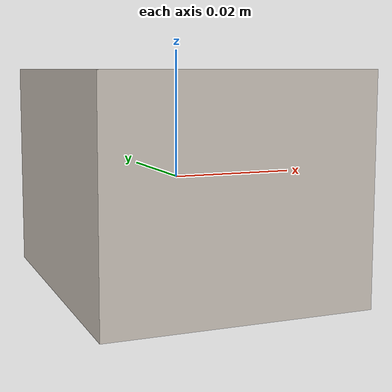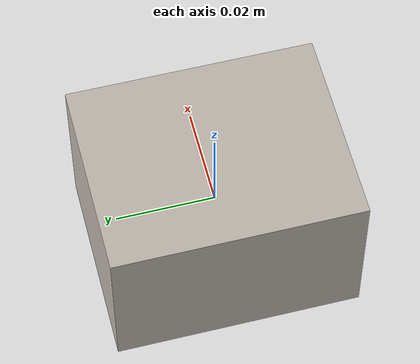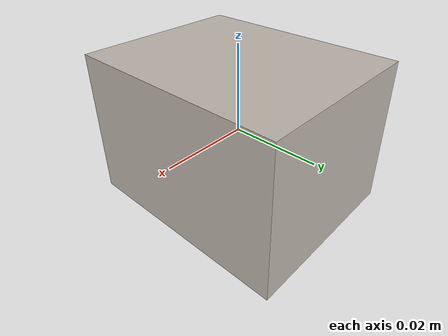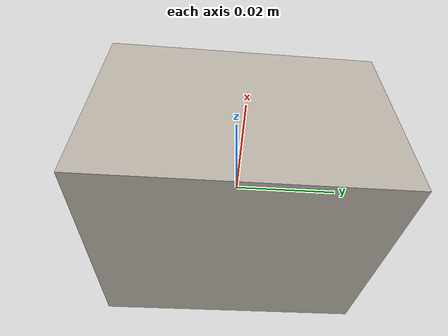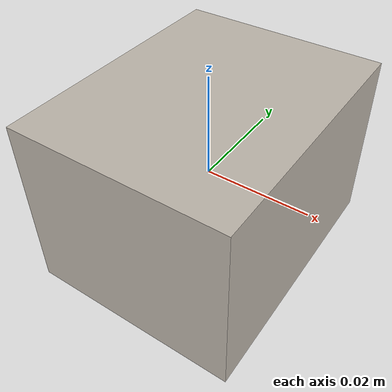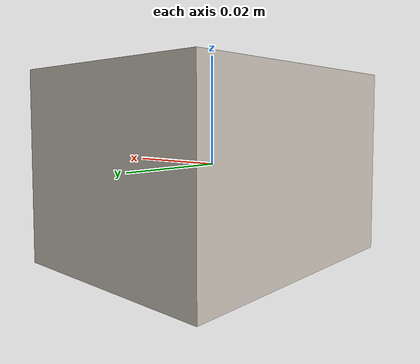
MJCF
<mujoco model="cardboard">
  <asset>
    <texture file="textures/smallboxes/cardboard.png" type="2d" name="tex-cardboard" />
    <material name="cardboard" reflectance="0.7" texrepeat="15 15" texture="tex-cardboard" texuniform="true"/>
  </asset>
  <worldbody>
    <body>
      <body name="collision">
        <geom pos="0 0 0" size="0.02 0.025 0.017" type="box" solimp="0.998 0.998 0.001" solref="0.001 1" density="50" friction="0.95 0.3 0.1"  material="cardboard" group="1" condim="4"/>
      </body>

      <site rgba="0 0 0 0" size="0.005" pos="0 0 -0.045" name="bottom_site"/>
      <site rgba="0 0 0 0" size="0.005" pos="0 0 0.03" name="top_site"/>
      <site rgba="0 0 0 0" size="0.005" pos="0.06 0.06 0" name="horizontal_radius_site"/>
    </body>
  </worldbody>
</mujoco>
